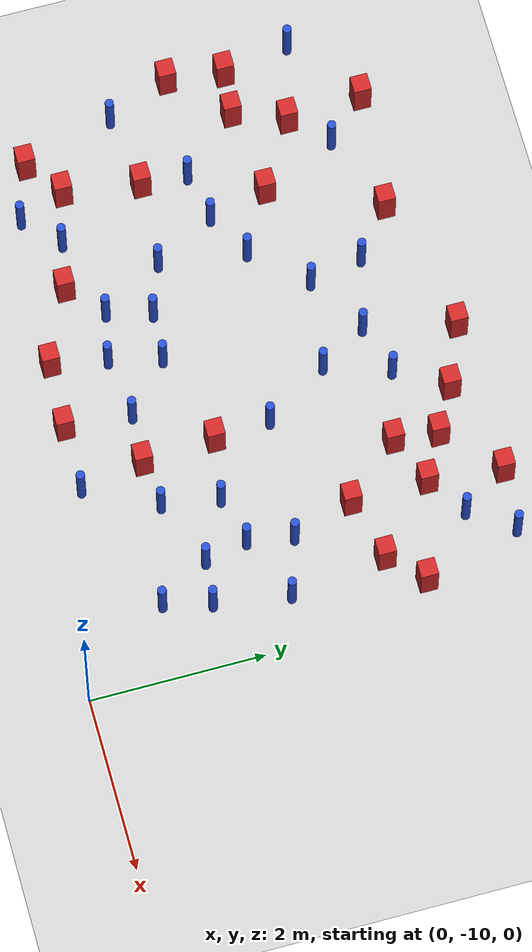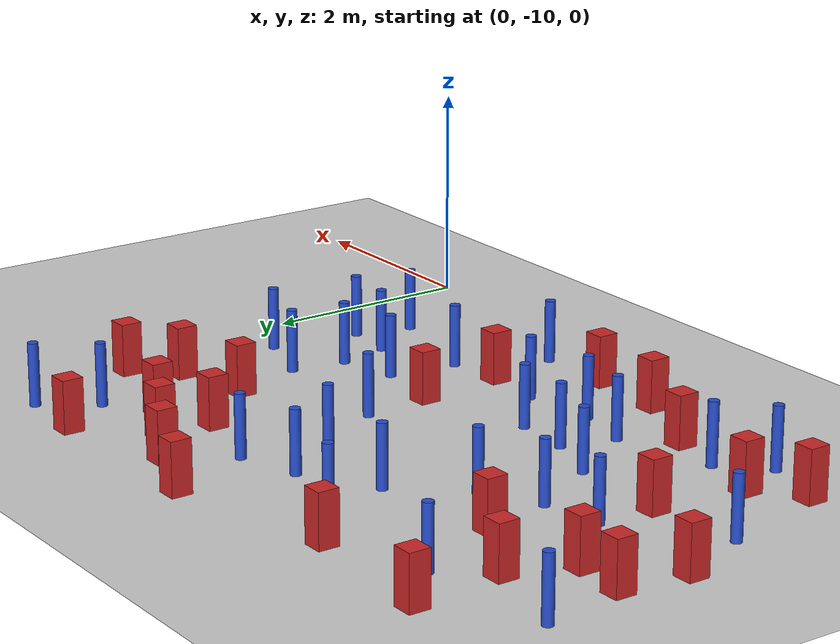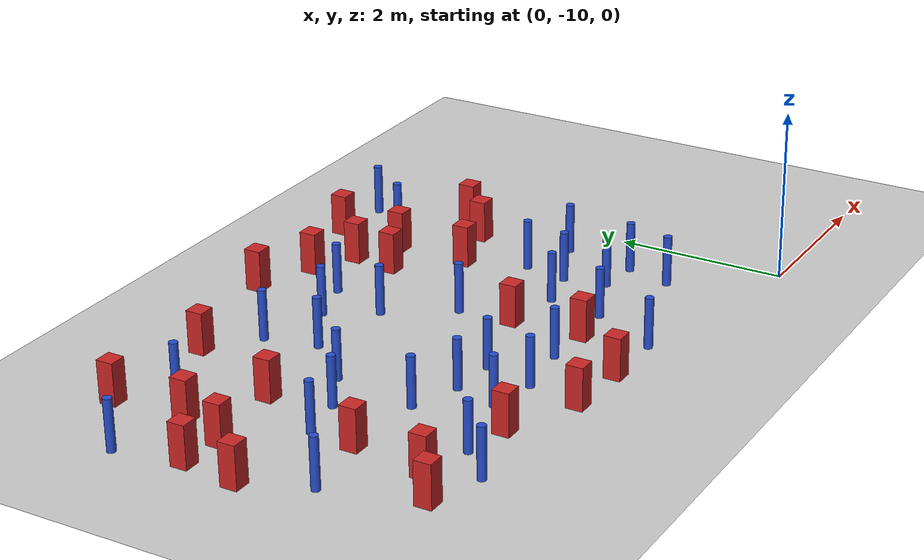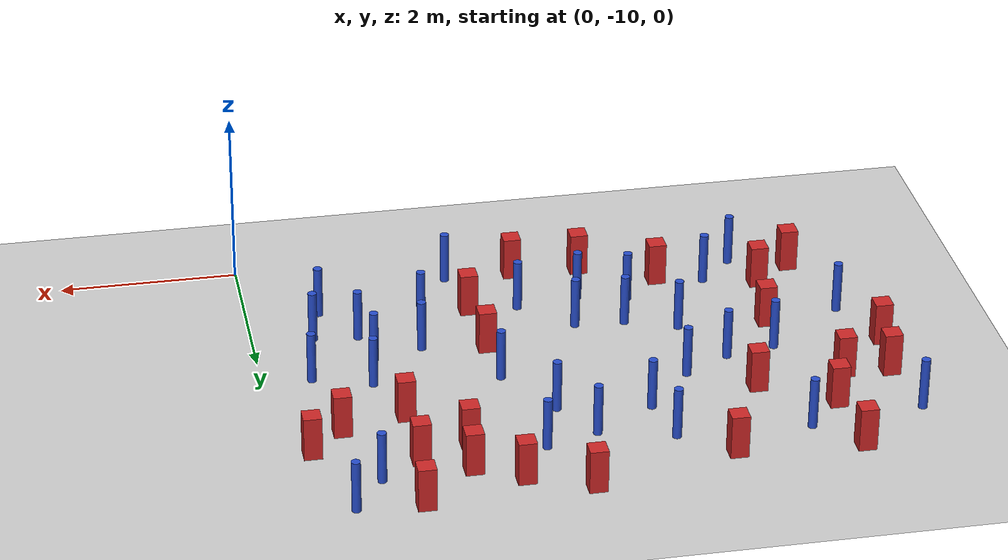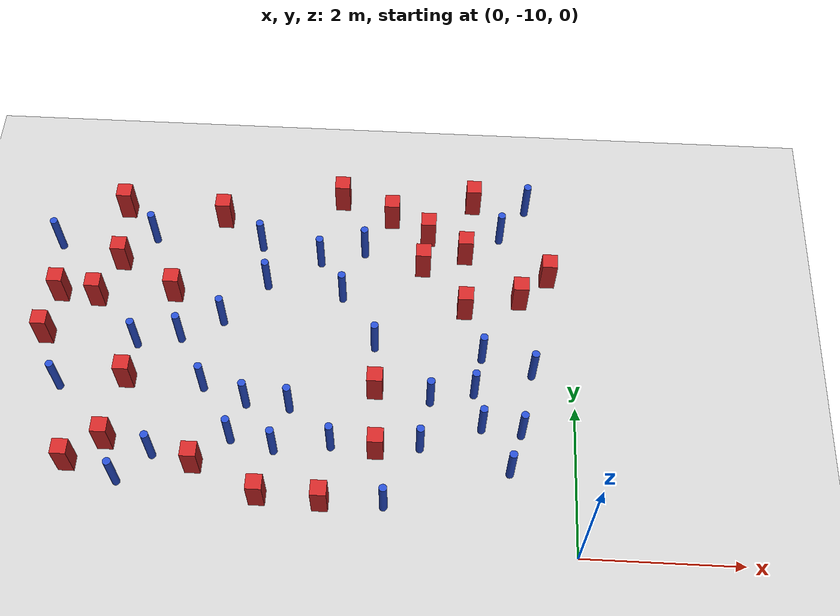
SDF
<sdf version="1.6">
 <world name="default">
  <model name="ground_plane">
   <static>1</static>
   <link name="link">
    <collision name="collision">
     <geometry><plane><normal>0 0 1</normal><size>100 100</size></plane></geometry>
     <surface><friction><ode><mu>100</mu><mu2>50</mu2></ode></friction></surface>
    </collision>
    <visual name="visual">
     <cast_shadows>0</cast_shadows>
     <geometry><plane><normal>0 0 1</normal><size>100 100</size></plane></geometry>
     <material>
      <ambient>1.0 1.0 1.0 1.0</ambient>
      <diffuse>0.8 0.8 0.8 1.0</diffuse>
      <specular>0.01 0.01 0.01 1.000000</specular>
     </material>
    </visual>
   </link>
  </model>
  <model name="pole_obstacle8">
   <static>true</static>
   <pose>-3.40156474789 -5.95213894236 7.38925637345e-09 -8.47170692798e-08 1.24976765033e-08 -1.74513093019e-07</pose>
   <link name="link">
    <pose>0 0 0.3 0 -0 0</pose>
    <inertial>
     <mass>1</mass>
     <inertia><ixx>0.145833</ixx><ixy>0</ixy><ixz>0</ixz><iyy>0.145833</iyy><iyz>0</iyz><izz>0.125</izz></inertia>
    </inertial>
    <collision name="collision">
     <geometry><cylinder><radius>0.05</radius><length>.6</length></cylinder></geometry>
    </collision>
    <visual name="visual">
     <geometry><cylinder><radius>0.05</radius><length>.6</length></cylinder></geometry>
     <material>
      <script><name>Gazebo/Blue</name><uri>file://media/materials/scripts/gazebo.material</uri></script>
     </material>
    </visual>
   </link>
  </model>
  <model name="square_post_obstacle19">
   <static>true</static>
   <pose>-4.77444846423 -5.31124981143 1.91545236811e-07 -7.35059704564e-06 1.12565212e-07 2.39332434364e-05</pose>
   <link name="link">
    <pose>0 0 0.25 0 -0 0</pose>
    <inertial>
     <mass>100</mass>
     <inertia>
      <ixx>0.166667</ixx>
      <ixy>0</ixy>
      <ixz>0</ixz>
      <iyy>0.166667</iyy>
      <iyz>0</iyz>
      <izz>0.166667</izz>
     </inertia>
    </inertial>
    <collision name="collision"><geometry><box><size>.2 .2 .5</size></box></geometry></collision>
    <visual name="visual">
     <geometry><box><size>.2 .2 .5</size></box></geometry>
     <material>
      <script><name>Gazebo/Red</name><uri>file://media/materials/scripts/gazebo.material</uri></script>
     </material>
    </visual>
   </link>
  </model>
  <model name="square_post_obstacle22">
   <static>true</static>
   <pose>-6.30855132058 -9.08890632467 1.91545236811e-07 -7.35059704564e-06 1.12565212e-07 2.39332434364e-05</pose>
   <link name="link">
    <pose>0 0 0.25 0 -0 0</pose>
    <inertial>
     <mass>100</mass>
     <inertia>
      <ixx>0.166667</ixx>
      <ixy>0</ixy>
      <ixz>0</ixz>
      <iyy>0.166667</iyy>
      <iyz>0</iyz>
      <izz>0.166667</izz>
     </inertia>
    </inertial>
    <collision name="collision"><geometry><box><size>.2 .2 .5</size></box></geometry></collision>
    <visual name="visual">
     <geometry><box><size>.2 .2 .5</size></box></geometry>
     <material>
      <script><name>Gazebo/Red</name><uri>file://media/materials/scripts/gazebo.material</uri></script>
     </material>
    </visual>
   </link>
  </model>
  <model name="square_post_obstacle23">
   <static>true</static>
   <pose>-0.344414654661 -6.07395988286 1.91545236811e-07 -7.35059704564e-06 1.12565212e-07 2.39332434364e-05</pose>
   <link name="link">
    <pose>0 0 0.25 0 -0 0</pose>
    <inertial>
     <mass>100</mass>
     <inertia>
      <ixx>0.166667</ixx>
      <ixy>0</ixy>
      <ixz>0</ixz>
      <iyy>0.166667</iyy>
      <iyz>0</iyz>
      <izz>0.166667</izz>
     </inertia>
    </inertial>
    <collision name="collision"><geometry><box><size>.2 .2 .5</size></box></geometry></collision>
    <visual name="visual">
     <geometry><box><size>.2 .2 .5</size></box></geometry>
     <material>
      <script><name>Gazebo/Red</name><uri>file://media/materials/scripts/gazebo.material</uri></script>
     </material>
    </visual>
   </link>
  </model>
  <model name="pole_obstacle23">
   <static>true</static>
   <pose>-6.97103977515 -5.84611869557 7.38925637345e-09 -8.47170692796e-08 1.24976764786e-08 -1.74513093032e-07</pose>
   <link name="link">
    <pose>0 0 0.3 0 -0 0</pose>
    <inertial>
     <mass>1</mass>
     <inertia><ixx>0.145833</ixx><ixy>0</ixy><ixz>0</ixz><iyy>0.145833</iyy><iyz>0</iyz><izz>0.125</izz></inertia>
    </inertial>
    <collision name="collision">
     <geometry><cylinder><radius>0.05</radius><length>.6</length></cylinder></geometry>
    </collision>
    <visual name="visual">
     <geometry><cylinder><radius>0.05</radius><length>.6</length></cylinder></geometry>
     <material>
      <script><name>Gazebo/Blue</name><uri>file://media/materials/scripts/gazebo.material</uri></script>
     </material>
    </visual>
   </link>
  </model>
  <model name="pole_obstacle24">
   <static>true</static>
   <pose>-0.646367867838 -4.95109673569 7.38925637345e-09 -8.471706928e-08 1.24976765086e-08 -1.74513093015e-07</pose>
   <link name="link">
    <pose>0 0 0.3 0 -0 0</pose>
    <inertial>
     <mass>1</mass>
     <inertia><ixx>0.145833</ixx><ixy>0</ixy><ixz>0</ixz><iyy>0.145833</iyy><iyz>0</iyz><izz>0.125</izz></inertia>
    </inertial>
    <collision name="collision">
     <geometry><cylinder><radius>0.05</radius><length>.6</length></cylinder></geometry>
    </collision>
    <visual name="visual">
     <geometry><cylinder><radius>0.05</radius><length>.6</length></cylinder></geometry>
     <material>
      <script><name>Gazebo/Blue</name><uri>file://media/materials/scripts/gazebo.material</uri></script>
     </material>
    </visual>
   </link>
  </model>
  <model name="pole_obstacle32">
   <static>true</static>
   <pose>-0.99263438322 -5.44303139999 7.38925637345e-09 -8.47170692799e-08 1.2497676509e-08 -1.74513093015e-07</pose>
   <link name="link">
    <pose>0 0 0.3 0 -0 0</pose>
    <inertial>
     <mass>1</mass>
     <inertia><ixx>0.145833</ixx><ixy>0</ixy><ixz>0</ixz><iyy>0.145833</iyy><iyz>0</iyz><izz>0.125</izz></inertia>
    </inertial>
    <collision name="collision">
     <geometry><cylinder><radius>0.05</radius><length>.6</length></cylinder></geometry>
    </collision>
    <visual name="visual">
     <geometry><cylinder><radius>0.05</radius><length>.6</length></cylinder></geometry>
     <material>
      <script><name>Gazebo/Blue</name><uri>file://media/materials/scripts/gazebo.material</uri></script>
     </material>
    </visual>
   </link>
  </model>
  <model name="pole_obstacle33">
   <static>true</static>
   <pose>-5.14209749621 -7.24082597831 7.38925637345e-09 -8.47170692796e-08 1.24976764786e-08 -1.74513093032e-07</pose>
   <link name="link">
    <pose>0 0 0.3 0 -0 0</pose>
    <inertial>
     <mass>1</mass>
     <inertia><ixx>0.145833</ixx><ixy>0</ixy><ixz>0</ixz><iyy>0.145833</iyy><iyz>0</iyz><izz>0.125</izz></inertia>
    </inertial>
    <collision name="collision">
     <geometry><cylinder><radius>0.05</radius><length>.6</length></cylinder></geometry>
    </collision>
    <visual name="visual">
     <geometry><cylinder><radius>0.05</radius><length>.6</length></cylinder></geometry>
     <material>
      <script><name>Gazebo/Blue</name><uri>file://media/materials/scripts/gazebo.material</uri></script>
     </material>
    </visual>
   </link>
  </model>
  <model name="square_post_obstacle39">
   <static>true</static>
   <pose>-6.83095547626 -6.6305597085 1.91545236811e-07 -7.35059704564e-06 1.12565212e-07 2.39332434364e-05</pose>
   <link name="link">
    <pose>0 0 0.25 0 -0 0</pose>
    <inertial>
     <mass>100</mass>
     <inertia>
      <ixx>0.166667</ixx>
      <ixy>0</ixy>
      <ixz>0</ixz>
      <iyy>0.166667</iyy>
      <iyz>0</iyz>
      <izz>0.166667</izz>
     </inertia>
    </inertial>
    <collision name="collision"><geometry><box><size>.2 .2 .5</size></box></geometry></collision>
    <visual name="visual">
     <geometry><box><size>.2 .2 .5</size></box></geometry>
     <material>
      <script><name>Gazebo/Red</name><uri>file://media/materials/scripts/gazebo.material</uri></script>
     </material>
    </visual>
   </link>
  </model>
  <model name="square_post_obstacle41">
   <static>true</static>
   <pose>-6.08312915172 -6.08784988013 1.91545236811e-07 -7.35059704564e-06 1.12565212e-07 2.39332434364e-05</pose>
   <link name="link">
    <pose>0 0 0.25 0 -0 0</pose>
    <inertial>
     <mass>100</mass>
     <inertia>
      <ixx>0.166667</ixx>
      <ixy>0</ixy>
      <ixz>0</ixz>
      <iyy>0.166667</iyy>
      <iyz>0</iyz>
      <izz>0.166667</izz>
     </inertia>
    </inertial>
    <collision name="collision"><geometry><box><size>.2 .2 .5</size></box></geometry></collision>
    <visual name="visual">
     <geometry><box><size>.2 .2 .5</size></box></geometry>
     <material>
      <script><name>Gazebo/Red</name><uri>file://media/materials/scripts/gazebo.material</uri></script>
     </material>
    </visual>
   </link>
  </model>
  <model name="square_post_obstacle43">
   <static>true</static>
   <pose>-5.74914116693 -7.89127819864 1.91545236811e-07 -7.35059704564e-06 1.12565212e-07 2.39332434364e-05</pose>
   <link name="link">
    <pose>0 0 0.25 0 -0 0</pose>
    <inertial>
     <mass>100</mass>
     <inertia>
      <ixx>0.166667</ixx>
      <ixy>0</ixy>
      <ixz>0</ixz>
      <iyy>0.166667</iyy>
      <iyz>0</iyz>
      <izz>0.166667</izz>
     </inertia>
    </inertial>
    <collision name="collision"><geometry><box><size>.2 .2 .5</size></box></geometry></collision>
    <visual name="visual">
     <geometry><box><size>.2 .2 .5</size></box></geometry>
     <material>
      <script><name>Gazebo/Red</name><uri>file://media/materials/scripts/gazebo.material</uri></script>
     </material>
    </visual>
   </link>
  </model>
  <model name="pole_obstacle48">
   <static>true</static>
   <pose>-3.0625924955 -8.7000728493 7.38925637345e-09 -8.47170692793e-08 1.24976764408e-08 -1.74513093041e-07</pose>
   <link name="link">
    <pose>0 0 0.3 0 -0 0</pose>
    <inertial>
     <mass>1</mass>
     <inertia><ixx>0.145833</ixx><ixy>0</ixy><ixz>0</ixz><iyy>0.145833</iyy><iyz>0</iyz><izz>0.125</izz></inertia>
    </inertial>
    <collision name="collision">
     <geometry><cylinder><radius>0.05</radius><length>.6</length></cylinder></geometry>
    </collision>
    <visual name="visual">
     <geometry><cylinder><radius>0.05</radius><length>.6</length></cylinder></geometry>
     <material>
      <script><name>Gazebo/Blue</name><uri>file://media/materials/scripts/gazebo.material</uri></script>
     </material>
    </visual>
   </link>
  </model>
  <model name="pole_obstacle49">
   <static>true</static>
   <pose>-4.21926468407 -5.73856915162 7.38925637345e-09 -8.47170692796e-08 1.24976764786e-08 -1.74513093032e-07</pose>
   <link name="link">
    <pose>0 0 0.3 0 -0 0</pose>
    <inertial>
     <mass>1</mass>
     <inertia><ixx>0.145833</ixx><ixy>0</ixy><ixz>0</ixz><iyy>0.145833</iyy><iyz>0</iyz><izz>0.125</izz></inertia>
    </inertial>
    <collision name="collision">
     <geometry><cylinder><radius>0.05</radius><length>.6</length></cylinder></geometry>
    </collision>
    <visual name="visual">
     <geometry><cylinder><radius>0.05</radius><length>.6</length></cylinder></geometry>
     <material>
      <script><name>Gazebo/Blue</name><uri>file://media/materials/scripts/gazebo.material</uri></script>
     </material>
    </visual>
   </link>
  </model>
  <model name="square_post_obstacle51">
   <static>true</static>
   <pose>-6.32610305955 -6.68102924514 1.91545236811e-07 -7.35059704564e-06 1.12565212e-07 2.39332434364e-05</pose>
   <link name="link">
    <pose>0 0 0.25 0 -0 0</pose>
    <inertial>
     <mass>100</mass>
     <inertia>
      <ixx>0.166667</ixx>
      <ixy>0</ixy>
      <ixz>0</ixz>
      <iyy>0.166667</iyy>
      <iyz>0</iyz>
      <izz>0.166667</izz>
     </inertia>
    </inertial>
    <collision name="collision"><geometry><box><size>.2 .2 .5</size></box></geometry></collision>
    <visual name="visual">
     <geometry><box><size>.2 .2 .5</size></box></geometry>
     <material>
      <script><name>Gazebo/Red</name><uri>file://media/materials/scripts/gazebo.material</uri></script>
     </material>
    </visual>
   </link>
  </model>
  <model name="square_post_obstacle53">
   <static>true</static>
   <pose>-0.718707057444 -6.44688886693 1.91545236811e-07 -7.35059704564e-06 1.12565212e-07 2.39332434364e-05</pose>
   <link name="link">
    <pose>0 0 0.25 0 -0 0</pose>
    <inertial>
     <mass>100</mass>
     <inertia>
      <ixx>0.166667</ixx>
      <ixy>0</ixy>
      <ixz>0</ixz>
      <iyy>0.166667</iyy>
      <iyz>0</iyz>
      <izz>0.166667</izz>
     </inertia>
    </inertial>
    <collision name="collision"><geometry><box><size>.2 .2 .5</size></box></geometry></collision>
    <visual name="visual">
     <geometry><box><size>.2 .2 .5</size></box></geometry>
     <material>
      <script><name>Gazebo/Red</name><uri>file://media/materials/scripts/gazebo.material</uri></script>
     </material>
    </visual>
   </link>
  </model>
  <model name="pole_obstacle61">
   <static>true</static>
   <pose>-1.19907977991 -7.3445469621 7.38925637345e-09 -8.47170692799e-08 1.24976765033e-08 -1.74513093018e-07</pose>
   <link name="link">
    <pose>0 0 0.3 0 -0 0</pose>
    <inertial>
     <mass>1</mass>
     <inertia><ixx>0.145833</ixx><ixy>0</ixy><ixz>0</ixz><iyy>0.145833</iyy><iyz>0</iyz><izz>0.125</izz></inertia>
    </inertial>
    <collision name="collision">
     <geometry><cylinder><radius>0.05</radius><length>.6</length></cylinder></geometry>
    </collision>
    <visual name="visual">
     <geometry><cylinder><radius>0.05</radius><length>.6</length></cylinder></geometry>
     <material>
      <script><name>Gazebo/Blue</name><uri>file://media/materials/scripts/gazebo.material</uri></script>
     </material>
    </visual>
   </link>
  </model>
  <model name="pole_obstacle66">
   <static>true</static>
   <pose>-6.60955719823 -8.01949869744 7.38925637345e-09 -8.47170692796e-08 1.24976764734e-08 -1.74513093037e-07</pose>
   <link name="link">
    <pose>0 0 0.3 0 -0 0</pose>
    <inertial>
     <mass>1</mass>
     <inertia><ixx>0.145833</ixx><ixy>0</ixy><ixz>0</ixz><iyy>0.145833</iyy><iyz>0</iyz><izz>0.125</izz></inertia>
    </inertial>
    <collision name="collision">
     <geometry><cylinder><radius>0.05</radius><length>.6</length></cylinder></geometry>
    </collision>
    <visual name="visual">
     <geometry><cylinder><radius>0.05</radius><length>.6</length></cylinder></geometry>
     <material>
      <script><name>Gazebo/Blue</name><uri>file://media/materials/scripts/gazebo.material</uri></script>
     </material>
    </visual>
   </link>
  </model>
  <model name="square_post_obstacle73">
   <static>true</static>
   <pose>-3.13084185216 -9.46497996022 1.91545236811e-07 -7.35059704564e-06 1.12565212e-07 2.39332434364e-05</pose>
   <link name="link">
    <pose>0 0 0.25 0 -0 0</pose>
    <inertial>
     <mass>100</mass>
     <inertia>
      <ixx>0.166667</ixx>
      <ixy>0</ixy>
      <ixz>0</ixz>
      <iyy>0.166667</iyy>
      <iyz>0</iyz>
      <izz>0.166667</izz>
     </inertia>
    </inertial>
    <collision name="collision"><geometry><box><size>.2 .2 .5</size></box></geometry></collision>
    <visual name="visual">
     <geometry><box><size>.2 .2 .5</size></box></geometry>
     <material>
      <script><name>Gazebo/Red</name><uri>file://media/materials/scripts/gazebo.material</uri></script>
     </material>
    </visual>
   </link>
  </model>
  <model name="pole_obstacle84">
   <static>true</static>
   <pose>-2.81696907877 -5.7723013078 7.38925637345e-09 -8.47170692798e-08 1.24976765033e-08 -1.74513093019e-07</pose>
   <link name="link">
    <pose>0 0 0.3 0 -0 0</pose>
    <inertial>
     <mass>1</mass>
     <inertia><ixx>0.145833</ixx><ixy>0</ixy><ixz>0</ixz><iyy>0.145833</iyy><iyz>0</iyz><izz>0.125</izz></inertia>
    </inertial>
    <collision name="collision">
     <geometry><cylinder><radius>0.05</radius><length>.6</length></cylinder></geometry>
    </collision>
    <visual name="visual">
     <geometry><cylinder><radius>0.05</radius><length>.6</length></cylinder></geometry>
     <material>
      <script><name>Gazebo/Blue</name><uri>file://media/materials/scripts/gazebo.material</uri></script>
     </material>
    </visual>
   </link>
  </model>
  <model name="square_post_obstacle80">
   <static>true</static>
   <pose>-2.55344408522 -7.89151578434 1.91545236811e-07 -7.35059704564e-06 1.12565212e-07 2.39332434364e-05</pose>
   <link name="link">
    <pose>0 0 0.25 0 -0 0</pose>
    <inertial>
     <mass>100</mass>
     <inertia>
      <ixx>0.166667</ixx>
      <ixy>0</ixy>
      <ixz>0</ixz>
      <iyy>0.166667</iyy>
      <iyz>0</iyz>
      <izz>0.166667</izz>
     </inertia>
    </inertial>
    <collision name="collision"><geometry><box><size>.2 .2 .5</size></box></geometry></collision>
    <visual name="visual">
     <geometry><box><size>.2 .2 .5</size></box></geometry>
     <material>
      <script><name>Gazebo/Red</name><uri>file://media/materials/scripts/gazebo.material</uri></script>
     </material>
    </visual>
   </link>
  </model>
  <model name="pole_obstacle89">
   <static>true</static>
   <pose>-1.94843124533 -8.66766216019 7.38925637345e-09 -8.47170692798e-08 1.24976764881e-08 -1.74513093027e-07</pose>
   <link name="link">
    <pose>0 0 0.3 0 -0 0</pose>
    <inertial>
     <mass>1</mass>
     <inertia><ixx>0.145833</ixx><ixy>0</ixy><ixz>0</ixz><iyy>0.145833</iyy><iyz>0</iyz><izz>0.125</izz></inertia>
    </inertial>
    <collision name="collision">
     <geometry><cylinder><radius>0.05</radius><length>.6</length></cylinder></geometry>
    </collision>
    <visual name="visual">
     <geometry><cylinder><radius>0.05</radius><length>.6</length></cylinder></geometry>
     <material>
      <script><name>Gazebo/Blue</name><uri>file://media/materials/scripts/gazebo.material</uri></script>
     </material>
    </visual>
   </link>
  </model>
  <model name="square_post_obstacle82">
   <static>true</static>
   <pose>-3.90570672659 -9.42638356308 1.91545236811e-07 -7.35059704564e-06 1.12565212e-07 2.39332434364e-05</pose>
   <link name="link">
    <pose>0 0 0.25 0 -0 0</pose>
    <inertial>
     <mass>100</mass>
     <inertia>
      <ixx>0.166667</ixx>
      <ixy>0</ixy>
      <ixz>0</ixz>
      <iyy>0.166667</iyy>
      <iyz>0</iyz>
      <izz>0.166667</izz>
     </inertia>
    </inertial>
    <collision name="collision"><geometry><box><size>.2 .2 .5</size></box></geometry></collision>
    <visual name="visual">
     <geometry><box><size>.2 .2 .5</size></box></geometry>
     <material>
      <script><name>Gazebo/Red</name><uri>file://media/materials/scripts/gazebo.material</uri></script>
     </material>
    </visual>
   </link>
  </model>
  <model name="pole_obstacle91">
   <static>true</static>
   <pose>-0.549428933537 -7.55556145079 7.38925637345e-09 -8.471706928e-08 1.24976765117e-08 -1.74513093013e-07</pose>
   <link name="link">
    <pose>0 0 0.3 0 -0 0</pose>
    <inertial>
     <mass>1</mass>
     <inertia><ixx>0.145833</ixx><ixy>0</ixy><ixz>0</ixz><iyy>0.145833</iyy><iyz>0</iyz><izz>0.125</izz></inertia>
    </inertial>
    <collision name="collision">
     <geometry><cylinder><radius>0.05</radius><length>.6</length></cylinder></geometry>
    </collision>
    <visual name="visual">
     <geometry><cylinder><radius>0.05</radius><length>.6</length></cylinder></geometry>
     <material>
      <script><name>Gazebo/Blue</name><uri>file://media/materials/scripts/gazebo.material</uri></script>
     </material>
    </visual>
   </link>
  </model>
  <model name="pole_obstacle93">
   <static>true</static>
   <pose>-0.822274139974 -8.95224676499 7.38925637345e-09 -8.47170692797e-08 1.249767648e-08 -1.74513093032e-07</pose>
   <link name="link">
    <pose>0 0 0.3 0 -0 0</pose>
    <inertial>
     <mass>1</mass>
     <inertia><ixx>0.145833</ixx><ixy>0</ixy><ixz>0</ixz><iyy>0.145833</iyy><iyz>0</iyz><izz>0.125</izz></inertia>
    </inertial>
    <collision name="collision">
     <geometry><cylinder><radius>0.05</radius><length>.6</length></cylinder></geometry>
    </collision>
    <visual name="visual">
     <geometry><cylinder><radius>0.05</radius><length>.6</length></cylinder></geometry>
     <material>
      <script><name>Gazebo/Blue</name><uri>file://media/materials/scripts/gazebo.material</uri></script>
     </material>
    </visual>
   </link>
  </model>
  <model name="pole_obstacle96">
   <static>true</static>
   <pose>-4.75565090096 -7.95193706176 7.38925637345e-09 -8.47170692796e-08 1.24976764752e-08 -1.74513093035e-07</pose>
   <link name="link">
    <pose>0 0 0.3 0 -0 0</pose>
    <inertial>
     <mass>1</mass>
     <inertia><ixx>0.145833</ixx><ixy>0</ixy><ixz>0</ixz><iyy>0.145833</iyy><iyz>0</iyz><izz>0.125</izz></inertia>
    </inertial>
    <collision name="collision">
     <geometry><cylinder><radius>0.05</radius><length>.6</length></cylinder></geometry>
    </collision>
    <visual name="visual">
     <geometry><cylinder><radius>0.05</radius><length>.6</length></cylinder></geometry>
     <material>
      <script><name>Gazebo/Blue</name><uri>file://media/materials/scripts/gazebo.material</uri></script>
     </material>
    </visual>
   </link>
  </model>
  <model name="pole_obstacle99">
   <static>true</static>
   <pose>-2.59603035748 -7.24412548191 7.38925637345e-09 -8.47170692798e-08 1.24976765033e-08 -1.74513093019e-07</pose>
   <link name="link">
    <pose>0 0 0.3 0 -0 0</pose>
    <inertial>
     <mass>1</mass>
     <inertia><ixx>0.145833</ixx><ixy>0</ixy><ixz>0</ixz><iyy>0.145833</iyy><iyz>0</iyz><izz>0.125</izz></inertia>
    </inertial>
    <collision name="collision">
     <geometry><cylinder><radius>0.05</radius><length>.6</length></cylinder></geometry>
    </collision>
    <visual name="visual">
     <geometry><cylinder><radius>0.05</radius><length>.6</length></cylinder></geometry>
     <material>
      <script><name>Gazebo/Blue</name><uri>file://media/materials/scripts/gazebo.material</uri></script>
     </material>
    </visual>
   </link>
  </model>
  <model name="square_post_obstacle96">
   <static>true</static>
   <pose>-5.8755742219 -8.77253056773 1.91545236811e-07 -7.35059704564e-06 1.12565212e-07 2.39332434364e-05</pose>
   <link name="link">
    <pose>0 0 0.25 0 -0 0</pose>
    <inertial>
     <mass>100</mass>
     <inertia>
      <ixx>0.166667</ixx>
      <ixy>0</ixy>
      <ixz>0</ixz>
      <iyy>0.166667</iyy>
      <iyz>0</iyz>
      <izz>0.166667</izz>
     </inertia>
    </inertial>
    <collision name="collision"><geometry><box><size>.2 .2 .5</size></box></geometry></collision>
    <visual name="visual">
     <geometry><box><size>.2 .2 .5</size></box></geometry>
     <material>
      <script><name>Gazebo/Red</name><uri>file://media/materials/scripts/gazebo.material</uri></script>
     </material>
    </visual>
   </link>
  </model>
  <model name="square_post_obstacle97">
   <static>true</static>
   <pose>-6.14569846159 -5.2102640542 1.91545236811e-07 -7.35059704564e-06 1.12565212e-07 2.39332434364e-05</pose>
   <link name="link">
    <pose>0 0 0.25 0 -0 0</pose>
    <inertial>
     <mass>100</mass>
     <inertia>
      <ixx>0.166667</ixx>
      <ixy>0</ixy>
      <ixz>0</ixz>
      <iyy>0.166667</iyy>
      <iyz>0</iyz>
      <izz>0.166667</izz>
     </inertia>
    </inertial>
    <collision name="collision"><geometry><box><size>.2 .2 .5</size></box></geometry></collision>
    <visual name="visual">
     <geometry><box><size>.2 .2 .5</size></box></geometry>
     <material>
      <script><name>Gazebo/Red</name><uri>file://media/materials/scripts/gazebo.material</uri></script>
     </material>
    </visual>
   </link>
  </model>
  <model name="square_post_obstacle101">
   <static>true</static>
   <pose>-1.43804337801 -6.63462786299 1.91545236811e-07 -7.35059704564e-06 1.12565212e-07 2.39332434364e-05</pose>
   <link name="link">
    <pose>0 0 0.25 0 -0 0</pose>
    <inertial>
     <mass>100</mass>
     <inertia>
      <ixx>0.166667</ixx>
      <ixy>0</ixy>
      <ixz>0</ixz>
      <iyy>0.166667</iyy>
      <iyz>0</iyz>
      <izz>0.166667</izz>
     </inertia>
    </inertial>
    <collision name="collision"><geometry><box><size>.2 .2 .5</size></box></geometry></collision>
    <visual name="visual">
     <geometry><box><size>.2 .2 .5</size></box></geometry>
     <material>
      <script><name>Gazebo/Red</name><uri>file://media/materials/scripts/gazebo.material</uri></script>
     </material>
    </visual>
   </link>
  </model>
  <model name="pole_obstacle117">
   <static>true</static>
   <pose>-4.32558388942 -8.67157371949 7.38925637345e-09 -8.471706928e-08 1.24976765081e-08 -1.74513093015e-07</pose>
   <link name="link">
    <pose>0 0 0.3 0 -0 0</pose>
    <inertial>
     <mass>1</mass>
     <inertia><ixx>0.145833</ixx><ixy>0</ixy><ixz>0</ixz><iyy>0.145833</iyy><iyz>0</iyz><izz>0.125</izz></inertia>
    </inertial>
    <collision name="collision">
     <geometry><cylinder><radius>0.05</radius><length>.6</length></cylinder></geometry>
    </collision>
    <visual name="visual">
     <geometry><cylinder><radius>0.05</radius><length>.6</length></cylinder></geometry>
     <material>
      <script><name>Gazebo/Blue</name><uri>file://media/materials/scripts/gazebo.material</uri></script>
     </material>
    </visual>
   </link>
  </model>
  <model name="pole_obstacle120">
   <static>true</static>
   <pose>-5.27804434211 -8.92744725833 7.38925637345e-09 -8.471706928e-08 1.24976765081e-08 -1.74513093015e-07</pose>
   <link name="link">
    <pose>0 0 0.3 0 -0 0</pose>
    <inertial>
     <mass>1</mass>
     <inertia><ixx>0.145833</ixx><ixy>0</ixy><ixz>0</ixz><iyy>0.145833</iyy><iyz>0</iyz><izz>0.125</izz></inertia>
    </inertial>
    <collision name="collision">
     <geometry><cylinder><radius>0.05</radius><length>.6</length></cylinder></geometry>
    </collision>
    <visual name="visual">
     <geometry><cylinder><radius>0.05</radius><length>.6</length></cylinder></geometry>
     <material>
      <script><name>Gazebo/Blue</name><uri>file://media/materials/scripts/gazebo.material</uri></script>
     </material>
    </visual>
   </link>
  </model>
  <model name="pole_obstacle125">
   <static>true</static>
   <pose>-1.18414076415 -8.36288435843 7.38925637345e-09 -8.47170692798e-08 1.24976764881e-08 -1.74513093027e-07</pose>
   <link name="link">
    <pose>0 0 0.3 0 -0 0</pose>
    <inertial>
     <mass>1</mass>
     <inertia><ixx>0.145833</ixx><ixy>0</ixy><ixz>0</ixz><iyy>0.145833</iyy><iyz>0</iyz><izz>0.125</izz></inertia>
    </inertial>
    <collision name="collision">
     <geometry><cylinder><radius>0.05</radius><length>.6</length></cylinder></geometry>
    </collision>
    <visual name="visual">
     <geometry><cylinder><radius>0.05</radius><length>.6</length></cylinder></geometry>
     <material>
      <script><name>Gazebo/Blue</name><uri>file://media/materials/scripts/gazebo.material</uri></script>
     </material>
    </visual>
   </link>
  </model>
  <model name="pole_obstacle126">
   <static>true</static>
   <pose>-4.61773297005 -6.95483301512 7.38925637345e-09 -8.47170692796e-08 1.24976764786e-08 -1.74513093032e-07</pose>
   <link name="link">
    <pose>0 0 0.3 0 -0 0</pose>
    <inertial>
     <mass>1</mass>
     <inertia><ixx>0.145833</ixx><ixy>0</ixy><ixz>0</ixz><iyy>0.145833</iyy><iyz>0</iyz><izz>0.125</izz></inertia>
    </inertial>
    <collision name="collision">
     <geometry><cylinder><radius>0.05</radius><length>.6</length></cylinder></geometry>
    </collision>
    <visual name="visual">
     <geometry><cylinder><radius>0.05</radius><length>.6</length></cylinder></geometry>
     <material>
      <script><name>Gazebo/Blue</name><uri>file://media/materials/scripts/gazebo.material</uri></script>
     </material>
    </visual>
   </link>
  </model>
  <model name="square_post_obstacle119">
   <static>true</static>
   <pose>-2.47444797333 -5.2052371911 1.91545236811e-07 -7.35059704564e-06 1.12565212e-07 2.39332434364e-05</pose>
   <link name="link">
    <pose>0 0 0.25 0 -0 0</pose>
    <inertial>
     <mass>100</mass>
     <inertia>
      <ixx>0.166667</ixx>
      <ixy>0</ixy>
      <ixz>0</ixz>
      <iyy>0.166667</iyy>
      <iyz>0</iyz>
      <izz>0.166667</izz>
     </inertia>
    </inertial>
    <collision name="collision"><geometry><box><size>.2 .2 .5</size></box></geometry></collision>
    <visual name="visual">
     <geometry><box><size>.2 .2 .5</size></box></geometry>
     <material>
      <script><name>Gazebo/Red</name><uri>file://media/materials/scripts/gazebo.material</uri></script>
     </material>
    </visual>
   </link>
  </model>
  <model name="square_post_obstacle124">
   <static>true</static>
   <pose>-2.49667490627 -8.73422212892 1.91545236811e-07 -7.35059704564e-06 1.12565212e-07 2.39332434364e-05</pose>
   <link name="link">
    <pose>0 0 0.25 0 -0 0</pose>
    <inertial>
     <mass>100</mass>
     <inertia>
      <ixx>0.166667</ixx>
      <ixy>0</ixy>
      <ixz>0</ixz>
      <iyy>0.166667</iyy>
      <iyz>0</iyz>
      <izz>0.166667</izz>
     </inertia>
    </inertial>
    <collision name="collision"><geometry><box><size>.2 .2 .5</size></box></geometry></collision>
    <visual name="visual">
     <geometry><box><size>.2 .2 .5</size></box></geometry>
     <material>
      <script><name>Gazebo/Red</name><uri>file://media/materials/scripts/gazebo.material</uri></script>
     </material>
    </visual>
   </link>
  </model>
  <model name="square_post_obstacle140">
   <static>true</static>
   <pose>-6.91437215552 -7.28666245186 1.91545236811e-07 -7.35059704564e-06 1.12565212e-07 2.39332434364e-05</pose>
   <link name="link">
    <pose>0 0 0.25 0 -0 0</pose>
    <inertial>
     <mass>100</mass>
     <inertia>
      <ixx>0.166667</ixx>
      <ixy>0</ixy>
      <ixz>0</ixz>
      <iyy>0.166667</iyy>
      <iyz>0</iyz>
      <izz>0.166667</izz>
     </inertia>
    </inertial>
    <collision name="collision"><geometry><box><size>.2 .2 .5</size></box></geometry></collision>
    <visual name="visual">
     <geometry><box><size>.2 .2 .5</size></box></geometry>
     <material>
      <script><name>Gazebo/Red</name><uri>file://media/materials/scripts/gazebo.material</uri></script>
     </material>
    </visual>
   </link>
  </model>
  <model name="square_post_obstacle150">
   <static>true</static>
   <pose>-5.30943374252 -6.55908143226 1.91545236811e-07 -7.35059704564e-06 1.12565212e-07 2.39332434364e-05</pose>
   <link name="link">
    <pose>0 0 0.25 0 -0 0</pose>
    <inertial>
     <mass>100</mass>
     <inertia>
      <ixx>0.166667</ixx>
      <ixy>0</ixy>
      <ixz>0</ixz>
      <iyy>0.166667</iyy>
      <iyz>0</iyz>
      <izz>0.166667</izz>
     </inertia>
    </inertial>
    <collision name="collision"><geometry><box><size>.2 .2 .5</size></box></geometry></collision>
    <visual name="visual">
     <geometry><box><size>.2 .2 .5</size></box></geometry>
     <material>
      <script><name>Gazebo/Red</name><uri>file://media/materials/scripts/gazebo.material</uri></script>
     </material>
    </visual>
   </link>
  </model>
  <model name="pole_obstacle168">
   <static>true</static>
   <pose>-5.69332640892 -5.67612868446 7.38925637345e-09 -8.47170692796e-08 1.24976764786e-08 -1.74513093032e-07</pose>
   <link name="link">
    <pose>0 0 0.3 0 -0 0</pose>
    <inertial>
     <mass>1</mass>
     <inertia><ixx>0.145833</ixx><ixy>0</ixy><ixz>0</ixz><iyy>0.145833</iyy><iyz>0</iyz><izz>0.125</izz></inertia>
    </inertial>
    <collision name="collision">
     <geometry><cylinder><radius>0.05</radius><length>.6</length></cylinder></geometry>
    </collision>
    <visual name="visual">
     <geometry><cylinder><radius>0.05</radius><length>.6</length></cylinder></geometry>
     <material>
      <script><name>Gazebo/Blue</name><uri>file://media/materials/scripts/gazebo.material</uri></script>
     </material>
    </visual>
   </link>
  </model>
  <model name="pole_obstacle174">
   <static>true</static>
   <pose>-5.6668907558 -9.3051667516 7.38925637345e-09 -8.471706928e-08 1.24976765081e-08 -1.74513093015e-07</pose>
   <link name="link">
    <pose>0 0 0.3 0 -0 0</pose>
    <inertial>
     <mass>1</mass>
     <inertia><ixx>0.145833</ixx><ixy>0</ixy><ixz>0</ixz><iyy>0.145833</iyy><iyz>0</iyz><izz>0.125</izz></inertia>
    </inertial>
    <collision name="collision">
     <geometry><cylinder><radius>0.05</radius><length>.6</length></cylinder></geometry>
    </collision>
    <visual name="visual">
     <geometry><cylinder><radius>0.05</radius><length>.6</length></cylinder></geometry>
     <material>
      <script><name>Gazebo/Blue</name><uri>file://media/materials/scripts/gazebo.material</uri></script>
     </material>
    </visual>
   </link>
  </model>
  <model name="pole_obstacle176">
   <static>true</static>
   <pose>-4.1843944118 -8.16112690784 7.38925637345e-09 -8.471706928e-08 1.24976765081e-08 -1.74513093015e-07</pose>
   <link name="link">
    <pose>0 0 0.3 0 -0 0</pose>
    <inertial>
     <mass>1</mass>
     <inertia><ixx>0.145833</ixx><ixy>0</ixy><ixz>0</ixz><iyy>0.145833</iyy><iyz>0</iyz><izz>0.125</izz></inertia>
    </inertial>
    <collision name="collision">
     <geometry><cylinder><radius>0.05</radius><length>.6</length></cylinder></geometry>
    </collision>
    <visual name="visual">
     <geometry><cylinder><radius>0.05</radius><length>.6</length></cylinder></geometry>
     <material>
      <script><name>Gazebo/Blue</name><uri>file://media/materials/scripts/gazebo.material</uri></script>
     </material>
    </visual>
   </link>
  </model>
  <model name="pole_obstacle180">
   <static>true</static>
   <pose>-1.84509082012 -8.00968548372 7.38925637345e-09 -8.47170692794e-08 1.24976764551e-08 -1.74513093044e-07</pose>
   <link name="link">
    <pose>0 0 0.3 0 -0 0</pose>
    <inertial>
     <mass>1</mass>
     <inertia><ixx>0.145833</ixx><ixy>0</ixy><ixz>0</ixz><iyy>0.145833</iyy><iyz>0</iyz><izz>0.125</izz></inertia>
    </inertial>
    <collision name="collision">
     <geometry><cylinder><radius>0.05</radius><length>.6</length></cylinder></geometry>
    </collision>
    <visual name="visual">
     <geometry><cylinder><radius>0.05</radius><length>.6</length></cylinder></geometry>
     <material>
      <script><name>Gazebo/Blue</name><uri>file://media/materials/scripts/gazebo.material</uri></script>
     </material>
    </visual>
   </link>
  </model>
  <model name="pole_obstacle182">
   <static>true</static>
   <pose>-3.62479999418 -8.19976654034 7.38925637345e-09 -8.47170692799e-08 1.24976765012e-08 -1.74513093021e-07</pose>
   <link name="link">
    <pose>0 0 0.3 0 -0 0</pose>
    <inertial>
     <mass>1</mass>
     <inertia><ixx>0.145833</ixx><ixy>0</ixy><ixz>0</ixz><iyy>0.145833</iyy><iyz>0</iyz><izz>0.125</izz></inertia>
    </inertial>
    <collision name="collision">
     <geometry><cylinder><radius>0.05</radius><length>.6</length></cylinder></geometry>
    </collision>
    <visual name="visual">
     <geometry><cylinder><radius>0.05</radius><length>.6</length></cylinder></geometry>
     <material>
      <script><name>Gazebo/Blue</name><uri>file://media/materials/scripts/gazebo.material</uri></script>
     </material>
    </visual>
   </link>
  </model>
  <model name="square_post_obstacle172">
   <static>true</static>
   <pose>-3.17127777857 -4.92648866618 1.91545236811e-07 -7.35059704564e-06 1.12565212e-07 2.39332434364e-05</pose>
   <link name="link">
    <pose>0 0 0.25 0 -0 0</pose>
    <inertial>
     <mass>100</mass>
     <inertia>
      <ixx>0.166667</ixx>
      <ixy>0</ixy>
      <ixz>0</ixz>
      <iyy>0.166667</iyy>
      <iyz>0</iyz>
      <izz>0.166667</izz>
     </inertia>
    </inertial>
    <collision name="collision"><geometry><box><size>.2 .2 .5</size></box></geometry></collision>
    <visual name="visual">
     <geometry><box><size>.2 .2 .5</size></box></geometry>
     <material>
      <script><name>Gazebo/Red</name><uri>file://media/materials/scripts/gazebo.material</uri></script>
     </material>
    </visual>
   </link>
  </model>
  <model name="square_post_obstacle173">
   <static>true</static>
   <pose>-1.96739428225 -5.4796136199 1.91545236811e-07 -7.35059704564e-06 1.12565212e-07 2.39332434364e-05</pose>
   <link name="link">
    <pose>0 0 0.25 0 -0 0</pose>
    <inertial>
     <mass>100</mass>
     <inertia>
      <ixx>0.166667</ixx>
      <ixy>0</ixy>
      <ixz>0</ixz>
      <iyy>0.166667</iyy>
      <iyz>0</iyz>
      <izz>0.166667</izz>
     </inertia>
    </inertial>
    <collision name="collision"><geometry><box><size>.2 .2 .5</size></box></geometry></collision>
    <visual name="visual">
     <geometry><box><size>.2 .2 .5</size></box></geometry>
     <material>
      <script><name>Gazebo/Red</name><uri>file://media/materials/scripts/gazebo.material</uri></script>
     </material>
    </visual>
   </link>
  </model>
  <model name="square_post_obstacle181">
   <static>true</static>
   <pose>-1.36679288237 -4.90453295831 1.91545236811e-07 -7.35059704564e-06 1.12565212e-07 2.39332434364e-05</pose>
   <link name="link">
    <pose>0 0 0.25 0 -0 0</pose>
    <inertial>
     <mass>100</mass>
     <inertia>
      <ixx>0.166667</ixx>
      <ixy>0</ixy>
      <ixz>0</ixz>
      <iyy>0.166667</iyy>
      <iyz>0</iyz>
      <izz>0.166667</izz>
     </inertia>
    </inertial>
    <collision name="collision"><geometry><box><size>.2 .2 .5</size></box></geometry></collision>
    <visual name="visual">
     <geometry><box><size>.2 .2 .5</size></box></geometry>
     <material>
      <script><name>Gazebo/Red</name><uri>file://media/materials/scripts/gazebo.material</uri></script>
     </material>
    </visual>
   </link>
  </model>
  <model name="pole_obstacle194">
   <static>true</static>
   <pose>-3.77138267553 -8.79204768051 7.38925637345e-09 -8.47170692799e-08 1.24976765012e-08 -1.74513093021e-07</pose>
   <link name="link">
    <pose>0 0 0.3 0 -0 0</pose>
    <inertial>
     <mass>1</mass>
     <inertia><ixx>0.145833</ixx><ixy>0</ixy><ixz>0</ixz><iyy>0.145833</iyy><iyz>0</iyz><izz>0.125</izz></inertia>
    </inertial>
    <collision name="collision">
     <geometry><cylinder><radius>0.05</radius><length>.6</length></cylinder></geometry>
    </collision>
    <visual name="visual">
     <geometry><cylinder><radius>0.05</radius><length>.6</length></cylinder></geometry>
     <material>
      <script><name>Gazebo/Blue</name><uri>file://media/materials/scripts/gazebo.material</uri></script>
     </material>
    </visual>
   </link>
  </model>
  <model name="pole_obstacle208">
   <static>true</static>
   <pose>-4.0875877589 -6.36080918049 7.38925637345e-09 -8.47170692796e-08 1.24976764786e-08 -1.74513093032e-07</pose>
   <link name="link">
    <pose>0 0 0.3 0 -0 0</pose>
    <inertial>
     <mass>1</mass>
     <inertia><ixx>0.145833</ixx><ixy>0</ixy><ixz>0</ixz><iyy>0.145833</iyy><iyz>0</iyz><izz>0.125</izz></inertia>
    </inertial>
    <collision name="collision">
     <geometry><cylinder><radius>0.05</radius><length>.6</length></cylinder></geometry>
    </collision>
    <visual name="visual">
     <geometry><cylinder><radius>0.05</radius><length>.6</length></cylinder></geometry>
     <material>
      <script><name>Gazebo/Blue</name><uri>file://media/materials/scripts/gazebo.material</uri></script>
     </material>
    </visual>
   </link>
  </model>
  <model name="pole_obstacle212">
   <static>true</static>
   <pose>-1.28852373154 -7.86945784936 7.38925637345e-09 -8.47170692799e-08 1.24976765033e-08 -1.74513093018e-07</pose>
   <link name="link">
    <pose>0 0 0.3 0 -0 0</pose>
    <inertial>
     <mass>1</mass>
     <inertia><ixx>0.145833</ixx><ixy>0</ixy><ixz>0</ixz><iyy>0.145833</iyy><iyz>0</iyz><izz>0.125</izz></inertia>
    </inertial>
    <collision name="collision">
     <geometry><cylinder><radius>0.05</radius><length>.6</length></cylinder></geometry>
    </collision>
    <visual name="visual">
     <geometry><cylinder><radius>0.05</radius><length>.6</length></cylinder></geometry>
     <material>
      <script><name>Gazebo/Blue</name><uri>file://media/materials/scripts/gazebo.material</uri></script>
     </material>
    </visual>
   </link>
  </model>
  <model name="pole_obstacle214">
   <static>true</static>
   <pose>-5.70530024335 -7.35478200541 7.38925637345e-09 -8.47170692796e-08 1.24976764786e-08 -1.74513093032e-07</pose>
   <link name="link">
    <pose>0 0 0.3 0 -0 0</pose>
    <inertial>
     <mass>1</mass>
     <inertia><ixx>0.145833</ixx><ixy>0</ixy><ixz>0</ixz><iyy>0.145833</iyy><iyz>0</iyz><izz>0.125</izz></inertia>
    </inertial>
    <collision name="collision">
     <geometry><cylinder><radius>0.05</radius><length>.6</length></cylinder></geometry>
    </collision>
    <visual name="visual">
     <geometry><cylinder><radius>0.05</radius><length>.6</length></cylinder></geometry>
     <material>
      <script><name>Gazebo/Blue</name><uri>file://media/materials/scripts/gazebo.material</uri></script>
     </material>
    </visual>
   </link>
  </model>
  <model name="pole_obstacle216">
   <static>true</static>
   <pose>-0.683688706721 -8.41654289452 7.38925637345e-09 -8.47170692797e-08 1.249767648e-08 -1.74513093032e-07</pose>
   <link name="link">
    <pose>0 0 0.3 0 -0 0</pose>
    <inertial>
     <mass>1</mass>
     <inertia><ixx>0.145833</ixx><ixy>0</ixy><ixz>0</ixz><iyy>0.145833</iyy><iyz>0</iyz><izz>0.125</izz></inertia>
    </inertial>
    <collision name="collision">
     <geometry><cylinder><radius>0.05</radius><length>.6</length></cylinder></geometry>
    </collision>
    <visual name="visual">
     <geometry><cylinder><radius>0.05</radius><length>.6</length></cylinder></geometry>
     <material>
      <script><name>Gazebo/Blue</name><uri>file://media/materials/scripts/gazebo.material</uri></script>
     </material>
    </visual>
   </link>
  </model>
  <model name="pole_obstacle222">
   <static>true</static>
   <pose>-3.06833724618 -6.50352715067 7.38925637345e-09 -8.47170692798e-08 1.24976765033e-08 -1.74513093019e-07</pose>
   <link name="link">
    <pose>0 0 0.3 0 -0 0</pose>
    <inertial>
     <mass>1</mass>
     <inertia><ixx>0.145833</ixx><ixy>0</ixy><ixz>0</ixz><iyy>0.145833</iyy><iyz>0</iyz><izz>0.125</izz></inertia>
    </inertial>
    <collision name="collision">
     <geometry><cylinder><radius>0.05</radius><length>.6</length></cylinder></geometry>
    </collision>
    <visual name="visual">
     <geometry><cylinder><radius>0.05</radius><length>.6</length></cylinder></geometry>
     <material>
      <script><name>Gazebo/Blue</name><uri>file://media/materials/scripts/gazebo.material</uri></script>
     </material>
    </visual>
   </link>
  </model>
  <model name="pole_obstacle224">
   <static>true</static>
   <pose>-2.35966537277 -9.47010152984 7.38925637345e-09 -8.47170692793e-08 1.24976764408e-08 -1.74513093041e-07</pose>
   <link name="link">
    <pose>0 0 0.3 0 -0 0</pose>
    <inertial>
     <mass>1</mass>
     <inertia><ixx>0.145833</ixx><ixy>0</ixy><ixz>0</ixz><iyy>0.145833</iyy><iyz>0</iyz><izz>0.125</izz></inertia>
    </inertial>
    <collision name="collision">
     <geometry><cylinder><radius>0.05</radius><length>.6</length></cylinder></geometry>
    </collision>
    <visual name="visual">
     <geometry><cylinder><radius>0.05</radius><length>.6</length></cylinder></geometry>
     <material>
      <script><name>Gazebo/Blue</name><uri>file://media/materials/scripts/gazebo.material</uri></script>
     </material>
    </visual>
   </link>
  </model>
  <model name="square_post_obstacle208">
   <static>true</static>
   <pose>-4.7424600352 -9.04024001192 1.91545236811e-07 -7.35059704564e-06 1.12565212e-07 2.39332434364e-05</pose>
   <link name="link">
    <pose>0 0 0.25 0 -0 0</pose>
    <inertial>
     <mass>100</mass>
     <inertia>
      <ixx>0.166667</ixx>
      <ixy>0</ixy>
      <ixz>0</ixz>
      <iyy>0.166667</iyy>
      <iyz>0</iyz>
      <izz>0.166667</izz>
     </inertia>
    </inertial>
    <collision name="collision"><geometry><box><size>.2 .2 .5</size></box></geometry></collision>
    <visual name="visual">
     <geometry><box><size>.2 .2 .5</size></box></geometry>
     <material>
      <script><name>Gazebo/Red</name><uri>file://media/materials/scripts/gazebo.material</uri></script>
     </material>
    </visual>
   </link>
  </model>
  <model name="square_post_obstacle209">
   <static>true</static>
   <pose>-1.4553300352 -5.75714001192 1.91545236811e-07 -7.35059704564e-06 1.12565212e-07 2.39332434364e-05</pose>
   <link name="link">
    <pose>0 0 0.25 0 -0 0</pose>
    <inertial>
     <mass>100</mass>
     <inertia>
      <ixx>0.166667</ixx>
      <ixy>0</ixy>
      <ixz>0</ixz>
      <iyy>0.166667</iyy>
      <iyz>0</iyz>
      <izz>0.166667</izz>
     </inertia>
    </inertial>
    <collision name="collision"><geometry><box><size>.2 .2 .5</size></box></geometry></collision>
    <visual name="visual">
     <geometry><box><size>.2 .2 .5</size></box></geometry>
     <material>
      <script><name>Gazebo/Red</name><uri>file://media/materials/scripts/gazebo.material</uri></script>
     </material>
    </visual>
   </link>
  </model>
  <model name="square_post_obstacle216">
   <static>true</static>
   <pose>-2.0168900352 -5.98646001192 1.91545236811e-07 -7.35059704564e-06 1.12565212e-07 2.39332434364e-05</pose>
   <link name="link">
    <pose>0 0 0.25 0 -0 0</pose>
    <inertial>
     <mass>100</mass>
     <inertia>
      <ixx>0.166667</ixx>
      <ixy>0</ixy>
      <ixz>0</ixz>
      <iyy>0.166667</iyy>
      <iyz>0</iyz>
      <izz>0.166667</izz>
     </inertia>
    </inertial>
    <collision name="collision"><geometry><box><size>.2 .2 .5</size></box></geometry></collision>
    <visual name="visual">
     <geometry><box><size>.2 .2 .5</size></box></geometry>
     <material>
      <script><name>Gazebo/Red</name><uri>file://media/materials/scripts/gazebo.material</uri></script>
     </material>
    </visual>
   </link>
  </model>
 </world>
</sdf>
